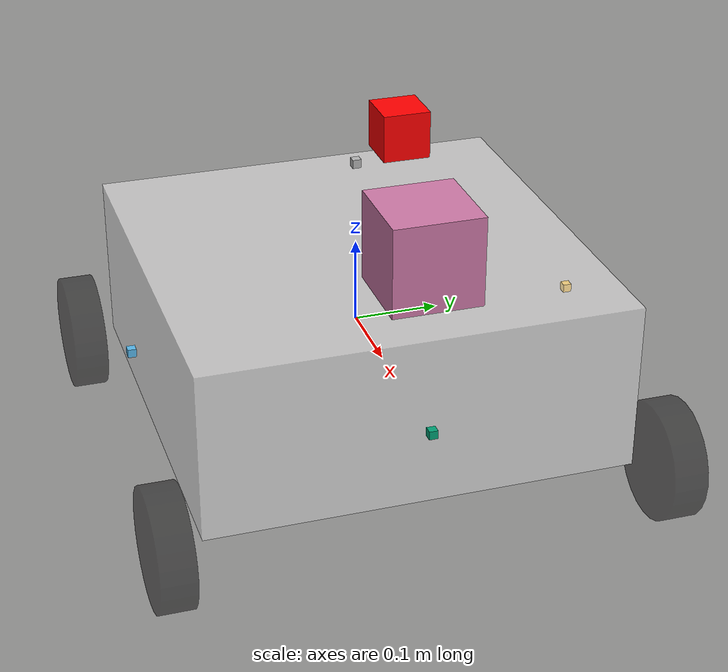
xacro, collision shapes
<?xml version="1.0"?>
<robot name="funrobo" xmlns:xacro="http://ros.org/wiki/xacro">

	<xacro:include filename="$(find funrobo_description)/urdf/wheel.urdf.xacro" />
	<xacro:include filename="$(find funrobo_description)/urdf/camera.urdf.xacro" />
	<xacro:include filename="$(find funrobo_description)/urdf/lidar.urdf.xacro" />
	<xacro:include filename="$(find funrobo_description)/urdf/imu.urdf.xacro" />
	<xacro:include filename="$(find funrobo_description)/urdf/range.urdf.xacro" />

	<property name="M_PI" value="3.14159"/>

	<property name="wheel_radius" value="0.07"/>
	<property name="wheel_thickness" value="0.04"/>
	<property name="wheel_x_offset" value="0.25"/>
	<property name="wheel_y_offset" value="0.29"/>
	<property name="wheel_z_offset" value="-0.1"/>
	<property name="wheel_mass" value="0.1"/>

	<property name="base_xdim" value="0.5"/>
	<property name="base_ydim" value="0.5"/>
	<property name="base_zdim" value="0.2"/>
	<property name="base_mass" value="3"/>

	<xacro:macro name="box_inertia" params="m x y z">
		<inertia  ixx="${m*(y*y+z*z)/12}" ixy = "0" ixz = "0"
			iyy="${m*(x*x+z*z)/12}" iyz = "0"
			izz="${m*(x*x+z*z)/12}"
			/>
	</xacro:macro>

	<xacro:macro name="sonar_sensor" params="name parent ros_topic *origin">
		<xacro:range_sensor name="${name}" parent="${parent}" ros_topic="${ros_topic}" update_rate="1" min_range="0.25" max_range="7.65" field_of_view="${30 * M_PI/180}" ray_count="50">
			<xacro:insert_block name="origin"/>
			<mesh filename="package://hector_sensors_description/meshes/sonar_sensor/max_sonar_ez4.dae"/>
		</xacro:range_sensor>
	</xacro:macro>

	<xacro:macro name="ir_sensor" params="name parent ros_topic *origin">
		<xacro:range_sensor name="${name}" parent="${parent}" ros_topic="${ros_topic}" update_rate="1" min_range="0.1" max_range="0.8" field_of_view="${8 * M_PI/180}" ray_count="10">
			<xacro:insert_block name="origin"/>
			<mesh filename="package://hector_sensors_description/meshes/sonar_sensor/max_sonar_ez4.dae"/>
		</xacro:range_sensor>
	</xacro:macro>

	<gazebo>
		<plugin name="gazebo_ros_control" filename="libgazebo_ros_control.so">
			<robotNamespace>funrobo</robotNamespace>
			<robotSimType>gazebo_ros_control/DefaultRobotHWSim</robotSimType>
		</plugin>
	</gazebo>

	<!-- Root Element -->
	<link name="base_link">
		<visual>
			<geometry>
				<box size="${base_xdim} ${base_ydim} ${base_zdim}"/>
			</geometry>
			<material name="white">
				<color rgba="1 1 1 0.5"/>
			</material>
		</visual>
		<collision>
			<geometry>
				<box size="${base_xdim} ${base_ydim} ${base_zdim}"/>
			</geometry>
		</collision>
		<inertial>
			<mass value="${base_mass}"/>
			<box_inertia m="${base_mass}" x="${base_xdim}" y="${base_ydim}" z="${base_zdim}"/>
		</inertial>
	</link>

	<!-- Four Wheels -->
	<xacro:wheel wheel_prefix="front_left">
		<origin xyz="${wheel_x_offset} ${wheel_y_offset} ${wheel_z_offset}" rpy="0 0 0"/>
	</xacro:wheel>

	<xacro:wheel wheel_prefix="front_right">
		<origin xyz="${wheel_x_offset} -${wheel_y_offset} ${wheel_z_offset}" rpy="0 0 0"/>
	</xacro:wheel>

	<xacro:wheel wheel_prefix="back_left">
		<origin xyz="-${wheel_x_offset} ${wheel_y_offset} ${wheel_z_offset}" rpy="0 0 0"/>
	</xacro:wheel>

	<xacro:wheel wheel_prefix="back_right">
		<origin xyz="-${wheel_x_offset} -${wheel_y_offset} ${wheel_z_offset}" rpy="0 0 0"/>
	</xacro:wheel>

	<!-- Camera -->
	<xacro:simple_camera camera_id="1">
		<origin xyz="${base_xdim/2 - 0.1} 0 0.3" rpy="0 0 0"/>
	</xacro:simple_camera>

	<!-- LIDAR -->
	<xacro:lidar lidar_id="1">
		<origin xyz="${base_xdim/2 - 0.02} 0 0.2" rpy="0 0 0"/>
	</xacro:lidar>

	<!-- IMU -->
	<xacro:fake_imu />

	<!-- Left Sonar -->
	<xacro:sonar_sensor name="left_sonar" parent="base_link" ros_topic="funrobo/left_sonar">
		<origin xyz="0 ${base_ydim/2 + 0.02} 0" rpy="0 0 ${M_PI/2}" />
	</xacro:sonar_sensor>

	<!-- Right Sonar -->
	<xacro:sonar_sensor name="right_sonar" parent="base_link" ros_topic="funrobo/right_sonar">
		<origin xyz="0 ${-base_ydim/2 - 0.02} 0" rpy="0 0 ${-M_PI/2}" />
	</xacro:sonar_sensor>

	<!-- Front-Down IR -->
	<xacro:ir_sensor name="front_ir" parent="base_link" ros_topic="funrobo/front_ir">
		<origin xyz="${base_xdim/2 + 0.02} 0 0" rpy="0 0 0" />
	</xacro:ir_sensor>

</robot>

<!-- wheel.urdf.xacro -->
<robot xmlns:xacro="http://ros.org/wifi/xacro" name="wheel">

	<xacro:macro name="cylinder_inertia" params="m r h">
		<inertia  ixx="${m*(3*r*r+h*h)/12}" ixy = "0" ixz = "0"
			iyy="${m*(3*r*r+h*h)/12}" iyz = "0"
			izz="${m*r*r/2}"
			/>
	</xacro:macro>

	<xacro:macro name="wheel" params="wheel_prefix *joint_pose">
		<link name="${wheel_prefix}_wheel_link">
			<inertial>
				<mass value="${wheel_mass}"/>
				<cylinder_inertia m="${wheel_mass}" r="${wheel_radius}" h="${wheel_thickness}"/>
			</inertial>
			<visual>
				<origin xyz="0 0 0" rpy="${M_PI/2} 0 0"/>
				<geometry>
					<cylinder length="${wheel_thickness}" radius="${wheel_radius}"/>
				</geometry>
				<material name="black">
					<color rgba="0 0 0 0.5"/>
				</material>
			</visual>
			<collision>
				<origin xyz="0.0 0.0 0" rpy="${M_PI/2} 0 0"/>
				<geometry>
					<cylinder length="${wheel_thickness}" radius="${wheel_radius}"/>
				</geometry>
			</collision>
		</link>

		<gazebo reference="${wheel_prefix}_wheel_link">
			<mu1 value="1.0"/>
			<mu2 value="1.0"/>
			<kp value="1000000.0" />
			<kd value="1.0" />
		</gazebo>

		<joint name="${wheel_prefix}_wheel" type="continuous">
			<parent link="base_link"/>
			<child link="${wheel_prefix}_wheel_link"/>
			<xacro:insert_block name="joint_pose"/>
			<axis xyz="0 1 0" rpy="0 0 0"/>
		</joint>

		<transmission name="${wheel_prefix}_wheel_trans">
			<type>transmission_interface/SimpleTransmission</type>
			<actuator name="${wheel_prefix}_wheel_motor">
				<hardwareInterface>VelocityJointInterface</hardwareInterface>
				<mechanicalReduction>1</mechanicalReduction>
			</actuator>
			<joint name="${wheel_prefix}_wheel">
				<hardwareInterface>VelocityJointInterface</hardwareInterface>
			</joint>
		</transmission>

	</xacro:macro>
</robot>

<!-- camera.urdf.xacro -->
<robot xmlns:xacro="http://ros.org/wiki/xacro" name="simple_camera">

	<xacro:macro name="simple_camera" params="camera_id *origin">

		<joint name="$camera_${camera_id}_joint" type="fixed">
			<axis xyz="0 1 0" />
			<xacro:insert_block name="origin"/>
			<parent link="base_link"/>
			<child link="camera_${camera_id}_link"/>
		</joint>

		<link name="camera_${camera_id}_link">
			<collision>
				<origin xyz="0 0 0" rpy="0 0 0"/>
				<geometry>
					<box size="0.05 0.05 0.05"/>
				</geometry>
			</collision>

			<visual>
				<origin xyz="0 0 0" rpy="0 0 0"/>
				<geometry>
					<box size="0.05 0.05 0.05"/>
				</geometry>
				<material name="red">
					<color rgba="1.0 0.0 0.0 1.0"/>
				</material>
			</visual>

			<inertial>
				<mass value="1e-5" />
				<origin xyz="0 0 0" rpy="0 0 0"/>
				<inertia ixx="1e-6" ixy="0" ixz="0" iyy="1e-6" iyz="0" izz="1e-6" />
			</inertial>
		</link>

		<gazebo reference="camera_${camera_id}_link">
			<sensor type="camera" name="camera_${camera_id}">
				<update_rate>30.0</update_rate>
				<camera>
					<horizontal_fov>1.186</horizontal_fov>
					<image>
						<width>800</width>
						<height>800</height>
						<format>R8G8B8</format>
					</image>
					<clip>
						<near>0.02</near>
						<far>300</far>
					</clip>
					<noise>
						<type>gaussian</type>
						<mean>0.0</mean>
						<stddev>0.007</stddev>
					</noise>
				</camera>
				<plugin name="camera_controller" filename="libgazebo_ros_camera.so">
					<alwaysOn>true</alwaysOn>
					<updateRate>0.0</updateRate>
					<cameraName>/funrobo/camera_${camera_id}</cameraName>
					<imageTopicName>image_raw</imageTopicName>
					<cameraInfoTopicName>camera_info</cameraInfoTopicName>
					<frameName>camera_link</frameName>
					<hackBaseline>0.07</hackBaseline>
					<distortionK1>0.0</distortionK1>
					<distortionK2>0.0</distortionK2>
					<distortionK3>0.0</distortionK3>
					<distortionT1>0.0</distortionT1>
					<distortionT2>0.0</distortionT2>
				</plugin>
			</sensor>
		</gazebo>
	</xacro:macro>

</robot>

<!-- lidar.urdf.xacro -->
<robot xmlns:xacro="http://ros.org/wiki/xacro" name="lidar">
	<xacro:macro name="lidar" params="lidar_id *origin">

		<joint name="hokuyo_joint" type="fixed">
			<axis xyz="0 1 0" /> <!-- NOT SO SURE -->
			<xacro:insert_block name="origin"/>
			<parent link="base_link"/>
			<child link="hokuyo_link"/>
		</joint>

		<!-- Hokuyo Laser -->
		<link name="hokuyo_link">
			<collision>
				<origin xyz="0 0 0" rpy="0 0 0"/>
				<geometry>
					<box size="0.1 0.1 0.1"/>
				</geometry>
			</collision>

			<visual>
				<origin xyz="0 0 0" rpy="0 0 0"/>
				<geometry>
					<mesh filename="package://funrobo_description/meshes/hokuyo.dae"/>
				</geometry>
			</visual>

			<inertial>
				<mass value="1e-5" />
				<origin xyz="0 0 0" rpy="0 0 0"/>
				<inertia ixx="1e-6" ixy="0" ixz="0" iyy="1e-6" iyz="0" izz="1e-6" />
			</inertial>
		</link>

		<gazebo reference="hokuyo_link">
			<sensor type="ray" name="head_hokuyo_sensor">
				<pose>0 0 0 0 0 0</pose>
				<visualize>true</visualize>
				<update_rate>40</update_rate>
				<ray>
					<scan>
						<horizontal>
							<samples>1024</samples>
							<resolution>1</resolution>
							<min_angle>-2.094395</min_angle>
							<max_angle>2.094395</max_angle>
						</horizontal>
					</scan>
					<range>
						<min>0.1</min>
						<max>6.0</max>
						<resolution>0.1</resolution>
					</range>
					<noise>
						<type>gaussian</type>
						<mean>0.0</mean>
						<stddev>0.01</stddev>
					</noise>
				</ray>
				<plugin name="gazebo_ros_head_hokuyo_controller" filename="libgazebo_ros_laser.so">
					<topicName>/funrobo/laser/scan</topicName>
					<frameName>hokuyo_link</frameName>
				</plugin>
			</sensor>
		</gazebo>
	</xacro:macro>
</robot>

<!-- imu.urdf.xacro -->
<robot xmlns:xacro="http://ros.org/wiki/xacro" name="fake_imu">
	<xacro:macro name="fake_imu">

		<joint name="imu_joint" type="fixed">
			<axis xyz="0 1 0" /> <!-- NOT SO SURE -->
			<origin xyz="0 0 0.2" rpy="0 0 0"/>
			<parent link="base_link"/>
			<child link="imu_link"/>
		</joint>

		<link name="imu_link">

			<inertial>
				<mass value="1e-5" />
				<origin xyz="0 0 0" rpy="0 0 0"/>
				<inertia ixx="1e-6" ixy="0" ixz="0" iyy="1e-6" iyz="0" izz="1e-6" />
			</inertial>

			<visual>
				<geometry>
					<box size="0.01 0.01 0.01"/>
				</geometry>
			</visual>

			<collision>
				<geometry>
					<box size="0.01 0.01 0.01"/>
				</geometry>
			</collision>

			<sensor name="imu" type="imu">
				<imu>
					<angular_velocity>
						<x>
							<noise type="gaussian">
								<mean>0.0</mean>
								<stddev>2e-4</stddev>
								<bias_mean>0.0000075</bias_mean>
								<bias_stddev>0.0000008</bias_stddev>
							</noise>
						</x>
						<y>
							<noise type="gaussian">
								<mean>0.0</mean>
								<stddev>2e-4</stddev>
								<bias_mean>0.0000075</bias_mean>
								<bias_stddev>0.0000008</bias_stddev>
							</noise>
						</y>
						<z>
							<noise type="gaussian">
								<mean>0.0</mean>
								<stddev>2e-4</stddev>
								<bias_mean>0.0000075</bias_mean>
								<bias_stddev>0.0000008</bias_stddev>
							</noise>
						</z>
					</angular_velocity>
					<linear_acceleration>
						<x>
							<noise type="gaussian">
								<mean>0.0</mean>
								<stddev>1.7e-2</stddev>
								<bias_mean>0.1</bias_mean>
								<bias_stddev>0.001</bias_stddev>
							</noise>
						</x>
						<y>
							<noise type="gaussian">
								<mean>0.0</mean>
								<stddev>1.7e-2</stddev>
								<bias_mean>0.1</bias_mean>
								<bias_stddev>0.001</bias_stddev>
							</noise>
						</y>
						<z>
							<noise type="gaussian">
								<mean>0.0</mean>
								<stddev>1.7e-2</stddev>
								<bias_mean>0.1</bias_mean>
								<bias_stddev>0.001</bias_stddev>
							</noise>
						</z>
					</linear_acceleration>
				</imu>
				<always_on>1</always_on>
				<update_rate>1000</update_rate>
			</sensor>
		</link>

		<gazebo>
			<plugin name="imu_plugin" filename="libgazebo_ros_imu.so">
				<alwaysOn>true</alwaysOn>
				<bodyName>imu_link</bodyName>
				<topicName>/funrobo/imu_data</topicName>
				<serviceName>imu_service</serviceName>
				<gaussianNoise>0.0</gaussianNoise>
				<updateRate>10.0</updateRate>
			</plugin>
		</gazebo>

	</xacro:macro>
</robot>

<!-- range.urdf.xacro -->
<robot xmlns:xacro="http://ros.org/wiki/xacro">
	<xacro:macro name="range_sensor" params="name parent *origin *mesh ros_topic update_rate min_range max_range field_of_view ray_count">

		<joint name="${name}_joint" type="fixed">
			<xacro:insert_block name="origin" />
			<parent link="${parent}"/>
			<child link="${name}_link"/>
		</joint>

		<link name="${name}_link">
			<inertial>
				<mass value="0.001" />
				<origin xyz="0 0 0" rpy="0 0 0" />
				<inertia ixx="0.000000017" ixy="0" ixz="0" iyy="0.000000017" iyz="0" izz="0.000000017" />
			</inertial>
			<visual>
				<origin xyz="0 0 0" rpy="0 0 0" />
				<geometry>
					<xacro:insert_block name="mesh" />
				</geometry>
			</visual>
			<collision>
				<origin xyz="0 0 0" rpy="0 0 0" />
				<geometry>
					<box size="0.01 0.01 0.01" />
				</geometry>
			</collision>
		</link>

		<gazebo reference="${name}_link">
			<sensor type="ray" name="${name}">
				<always_on>true</always_on>
				<update_rate>${update_rate}</update_rate>
				<pose>0 0 0 0 0 0</pose>
				<visualize>false</visualize>
				<ray>
					<scan>
						<horizontal>
							<samples>${ray_count}</samples>
							<resolution>1</resolution>
							<min_angle>-${field_of_view/2}</min_angle>
							<max_angle> ${field_of_view/2}</max_angle>
						</horizontal>
						<vertical>
							<samples>${ray_count}</samples>
							<resolution>1</resolution>
							<min_angle>-${field_of_view/2}</min_angle>
							<max_angle> ${field_of_view/2}</max_angle>
						</vertical>
					</scan>
					<range>
						<min>${min_range}</min>
						<max>${max_range}</max>
						<resolution>0.01</resolution>
					</range>
				</ray>

				<plugin name="gazebo_ros_${name}_controller" filename="libhector_gazebo_ros_sonar.so">
					<topicName>${ros_topic}</topicName>
					<frameId>${name}_link</frameId>
				</plugin>
			</sensor>
		</gazebo>
	</xacro:macro>
</robot>
